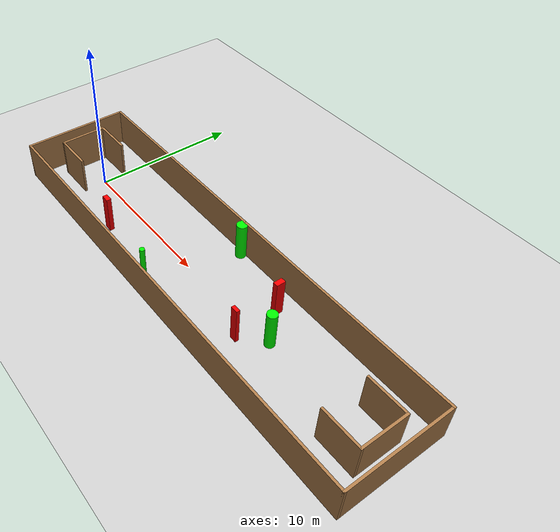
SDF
<sdf version="1.7">
 <world name="default">
  <light name="sun" type="directional">
   <pose>0 0 10 0 -0 0</pose>
   <diffuse>0.8 0.8 0.8 1</diffuse>
   <specular>0.2 0.2 0.2 1</specular>
   <attenuation>
    <range>1000</range>
    <constant>0.9</constant>
    <linear>0.01</linear>
    <quadratic>0.001</quadratic>
   </attenuation>
   <direction>-0.5 0.1 -0.9</direction>
   <spot><inner_angle>0</inner_angle><outer_angle>0</outer_angle><falloff>0</falloff></spot>
  </light>
  <model name="ground_plane">
   <static>1</static>
   <link name="link">
    <collision name="collision">
     <geometry><plane><normal>0 0 1</normal><size>100 100</size></plane></geometry>
     <surface>
      <contact><collide_bitmask>65535</collide_bitmask></contact>
      <friction><ode><mu>100</mu><mu2>50</mu2></ode></friction>
     </surface>
    </collision>
    <visual name="visual">
     <cast_shadows>0</cast_shadows>
     <geometry><plane><normal>0 0 1</normal><size>100 100</size></plane></geometry>
     <material>
      <script><uri>file://media/materials/scripts/gazebo.material</uri><name>Gazebo/Grey</name></script>
     </material>
    </visual>
   </link>
  </model>
  <gravity>0 0 -9.8</gravity>
  <magnetic_field>6e-06 2.3e-05 -4.2e-05</magnetic_field>
  <atmosphere type="adiabatic"/>
  <physics type="ode">
   <max_step_size>0.001</max_step_size>
   <real_time_factor>1</real_time_factor>
   <real_time_update_rate>1000</real_time_update_rate>
  </physics>
  <scene><ambient>0.4 0.4 0.4 1</ambient><background>0.7 0.7 0.7 1</background><shadows>1</shadows></scene>
  <spherical_coordinates>
   <surface_model>EARTH_WGS84</surface_model>
   <latitude_deg>0</latitude_deg>
   <longitude_deg>0</longitude_deg>
   <elevation>0</elevation>
   <heading_deg>0</heading_deg>
  </spherical_coordinates>
  <model name="my_base_walls">
   <link name="Wall_0">
    <collision name="Wall_0_Collision">
     <geometry><box><size>7.15 0.15 2.5</size></box></geometry>
     <pose>0 0 1.25 0 -0 0</pose>
    </collision>
    <visual name="Wall_0_Visual">
     <pose>0 0 1.25 0 -0 0</pose>
     <geometry><box><size>7.15 0.15 2.5</size></box></geometry>
     <material>
      <script><uri>file://media/materials/scripts/gazebo.material</uri><name>Gazebo/Wood</name></script>
      <ambient>1 1 1 1</ambient>
     </material>
     <meta><layer>0</layer></meta>
    </visual>
    <pose>-15 0 0 0 -0 1.5708</pose>
   </link>
   <link name="Wall_10">
    <collision name="Wall_10_Collision">
     <geometry><box><size>2.65 0.15 2.5</size></box></geometry>
     <pose>0 0 1.25 0 -0 0</pose>
    </collision>
    <visual name="Wall_10_Visual">
     <pose>0 0 1.25 0 -0 0</pose>
     <geometry><box><size>2.65 0.15 2.5</size></box></geometry>
     <material>
      <script><uri>file://media/materials/scripts/gazebo.material</uri><name>Gazebo/Wood</name></script>
      <ambient>1 1 1 1</ambient>
     </material>
     <meta><layer>0</layer></meta>
    </visual>
    <pose>-12.75 -1.5 0 0 -0 0</pose>
   </link>
   <link name="Wall_12">
    <collision name="Wall_12_Collision">
     <geometry><box><size>2.65 0.15 2.5</size></box></geometry>
     <pose>0 0 1.25 0 -0 0</pose>
    </collision>
    <visual name="Wall_12_Visual">
     <pose>0 0 1.25 0 -0 0</pose>
     <geometry><box><size>2.65 0.15 2.5</size></box></geometry>
     <material>
      <script><uri>file://media/materials/scripts/gazebo.material</uri><name>Gazebo/Wood</name></script>
      <ambient>1 1 1 1</ambient>
     </material>
     <meta><layer>0</layer></meta>
    </visual>
    <pose>-12.75 1.5 0 0 -0 0</pose>
   </link>
   <link name="Wall_14">
    <collision name="Wall_14_Collision">
     <geometry><box><size>3.15 0.15 2.5</size></box></geometry>
     <pose>0 0 1.25 0 -0 0</pose>
    </collision>
    <visual name="Wall_14_Visual">
     <pose>0 0 1.25 0 -0 0</pose>
     <geometry><box><size>3.15 0.15 2.5</size></box></geometry>
     <material>
      <script><uri>file://media/materials/scripts/gazebo.material</uri><name>Gazebo/Wood</name></script>
      <ambient>1 1 1 1</ambient>
     </material>
     <meta><layer>0</layer></meta>
    </visual>
    <pose>14 0 0 0 -0 -1.5708</pose>
   </link>
   <link name="Wall_15">
    <collision name="Wall_15_Collision">
     <geometry><box><size>2.65 0.15 2.5</size></box></geometry>
     <pose>0 0 1.25 0 -0 0</pose>
    </collision>
    <visual name="Wall_15_Visual">
     <pose>0 0 1.25 0 -0 0</pose>
     <geometry><box><size>2.65 0.15 2.5</size></box></geometry>
     <material>
      <script><uri>file://media/materials/scripts/gazebo.material</uri><name>Gazebo/Wood</name></script>
      <ambient>1 1 1 1</ambient>
     </material>
     <meta><layer>0</layer></meta>
    </visual>
    <pose>12.75 -1.5 0 0 -0 3.14159</pose>
   </link>
   <link name="Wall_17">
    <collision name="Wall_17_Collision">
     <geometry><box><size>2.65 0.15 2.5</size></box></geometry>
     <pose>0 0 1.25 0 -0 0</pose>
    </collision>
    <visual name="Wall_17_Visual">
     <pose>0 0 1.25 0 -0 0</pose>
     <geometry><box><size>2.65 0.15 2.5</size></box></geometry>
     <material>
      <script><uri>file://media/materials/scripts/gazebo.material</uri><name>Gazebo/Wood</name></script>
      <ambient>1 1 1 1</ambient>
     </material>
     <meta><layer>0</layer></meta>
    </visual>
    <pose>12.75 1.5 0 0 -0 3.14159</pose>
   </link>
   <link name="Wall_2">
    <collision name="Wall_2_Collision">
     <geometry><box><size>30.15 0.15 2.5</size></box></geometry>
     <pose>0 0 1.25 0 -0 0</pose>
    </collision>
    <visual name="Wall_2_Visual">
     <pose>0 0 1.25 0 -0 0</pose>
     <geometry><box><size>30.15 0.15 2.5</size></box></geometry>
     <material>
      <script><uri>file://media/materials/scripts/gazebo.material</uri><name>Gazebo/Wood</name></script>
      <ambient>1 1 1 1</ambient>
     </material>
     <meta><layer>0</layer></meta>
    </visual>
    <pose>-0 -3.5 0 0 -0 0</pose>
   </link>
   <link name="Wall_4">
    <collision name="Wall_4_Collision">
     <geometry><box><size>30.15 0.15 2.5</size></box></geometry>
     <pose>0 0 1.25 0 -0 0</pose>
    </collision>
    <visual name="Wall_4_Visual">
     <pose>0 0 1.25 0 -0 0</pose>
     <geometry><box><size>30.15 0.15 2.5</size></box></geometry>
     <material>
      <script><uri>file://media/materials/scripts/gazebo.material</uri><name>Gazebo/Wood</name></script>
      <ambient>1 1 1 1</ambient>
     </material>
     <meta><layer>0</layer></meta>
    </visual>
    <pose>-0 3.5 0 0 -0 0</pose>
   </link>
   <link name="Wall_6">
    <collision name="Wall_6_Collision">
     <geometry><box><size>7.15 0.15 2.5</size></box></geometry>
     <pose>0 0 1.25 0 -0 0</pose>
    </collision>
    <visual name="Wall_6_Visual">
     <pose>0 0 1.25 0 -0 0</pose>
     <geometry><box><size>7.15 0.15 2.5</size></box></geometry>
     <material>
      <script><uri>file://media/materials/scripts/gazebo.material</uri><name>Gazebo/Wood</name></script>
      <ambient>1 1 1 1</ambient>
     </material>
     <meta><layer>0</layer></meta>
    </visual>
    <pose>15 0 0 0 -0 -1.5708</pose>
   </link>
   <link name="Wall_9">
    <collision name="Wall_9_Collision">
     <geometry><box><size>3.15 0.15 2.5</size></box></geometry>
     <pose>0 0 1.25 0 -0 0</pose>
    </collision>
    <visual name="Wall_9_Visual">
     <pose>0 0 1.25 0 -0 0</pose>
     <geometry><box><size>3.15 0.15 2.5</size></box></geometry>
     <material>
      <script><uri>file://media/materials/scripts/gazebo.material</uri><name>Gazebo/Wood</name></script>
      <ambient>1 1 1 1</ambient>
     </material>
     <meta><layer>0</layer></meta>
    </visual>
    <pose>-14 0 0 0 -0 -1.5708</pose>
   </link>
   <static>1</static>
   <pose>11.5 0 0 0 -0 0</pose>
  </model>
  <model name="cylinder1">
   <static>1</static>
   <link name="link">
    <inertial>
     <mass>1</mass>
     <inertia><ixx>0.5</ixx><ixy>0</ixy><ixz>0</ixz><iyy>0.5</iyy><iyz>0</iyz><izz>1</izz></inertia>
    </inertial>
    <collision name="collision">
     <geometry><cylinder><radius>0.16269904329268534</radius><length>2.5</length></cylinder></geometry>
    </collision>
    <visual name="visual">
     <geometry><cylinder><radius>0.16269904329268534</radius><length>2.5</length></cylinder></geometry>
     <material>
      <ambient>0 1 0 1</ambient>
      <diffuse>0 1 0 1</diffuse>
      <specular>0.1 0.1 0.1 1</specular>
      <emissive>0 0 0 0</emissive>
     </material>
    </visual>
   </link>
   <pose>9.294004991962357 -2.6897322732508826 1.25 0 0 0</pose>
  </model>
  <model name="cylinder2">
   <static>1</static>
   <link name="link">
    <inertial>
     <mass>1</mass>
     <inertia><ixx>0.5</ixx><ixy>0</ixy><ixz>0</ixz><iyy>0.5</iyy><iyz>0</iyz><izz>1</izz></inertia>
    </inertial>
    <collision name="collision">
     <geometry><cylinder><radius>0.34145060056934257</radius><length>2.5</length></cylinder></geometry>
    </collision>
    <visual name="visual">
     <geometry><cylinder><radius>0.34145060056934257</radius><length>2.5</length></cylinder></geometry>
     <material>
      <ambient>0 1 0 1</ambient>
      <diffuse>0 1 0 1</diffuse>
      <specular>0.1 0.1 0.1 1</specular>
      <emissive>0 0 0 0</emissive>
     </material>
    </visual>
   </link>
   <pose>11.002825474691491 3.206007125902147 1.25 0 0 0</pose>
  </model>
  <model name="cylinder3">
   <static>1</static>
   <link name="link">
    <inertial>
     <mass>1</mass>
     <inertia><ixx>0.5</ixx><ixy>0</ixy><ixz>0</ixz><iyy>0.5</iyy><iyz>0</iyz><izz>1</izz></inertia>
    </inertial>
    <collision name="collision">
     <geometry><cylinder><radius>0.32186068077420993</radius><length>2.5</length></cylinder></geometry>
    </collision>
    <visual name="visual">
     <geometry><cylinder><radius>0.32186068077420993</radius><length>2.5</length></cylinder></geometry>
     <material>
      <ambient>0 1 0 1</ambient>
      <diffuse>0 1 0 1</diffuse>
      <specular>0.1 0.1 0.1 1</specular>
      <emissive>0 0 0 0</emissive>
     </material>
    </visual>
   </link>
   <pose>17.327551224488207 0.2570334184255083 1.25 0 0 0</pose>
  </model>
  <model name="box1">
   <static>1</static>
   <link name="link">
    <inertial>
     <mass>1</mass>
     <inertia><ixx>0.083</ixx><ixy>0</ixy><ixz>0</ixz><iyy>0.083</iyy><iyz>0</iyz><izz>0.083</izz></inertia>
    </inertial>
    <collision name="collision">
     <geometry><box><size>0.46217062957040855 0.22627711005323276 2.5</size></box></geometry>
    </collision>
    <visual name="visual">
     <geometry><box><size>0.46217062957040855 0.22627711005323276 2.5</size></box></geometry>
     <material>
      <ambient>1 0 0 1</ambient>
      <diffuse>1 0 0 1</diffuse>
      <specular>0.1 0.1 0.1 1</specular>
      <emissive>0 0 0 0</emissive>
     </material>
    </visual>
    <sensor name="my_contact" type="contact">
     <contact><collision>box_collision</collision><topic>__default_topic__</topic></contact>
    </sensor>
   </link>
   <pose>15.923038669025996 -1.0748718458733193 1.25 0 0 0</pose>
  </model>
  <model name="box2">
   <static>1</static>
   <link name="link">
    <inertial>
     <mass>1</mass>
     <inertia><ixx>0.083</ixx><ixy>0</ixy><ixz>0</ixz><iyy>0.083</iyy><iyz>0</iyz><izz>0.083</izz></inertia>
    </inertial>
    <collision name="collision">
     <geometry><box><size>0.33758928806402483 0.5970812013790754 2.5</size></box></geometry>
    </collision>
    <visual name="visual">
     <geometry><box><size>0.33758928806402483 0.5970812013790754 2.5</size></box></geometry>
     <material>
      <ambient>1 0 0 1</ambient>
      <diffuse>1 0 0 1</diffuse>
      <specular>0.1 0.1 0.1 1</specular>
      <emissive>0 0 0 0</emissive>
     </material>
    </visual>
    <sensor name="my_contact" type="contact">
     <contact><collision>box_collision</collision><topic>__default_topic__</topic></contact>
    </sensor>
   </link>
   <pose>15.815916362865114 2.0122936348546574 1.25 0 0 0</pose>
  </model>
  <model name="box3">
   <static>1</static>
   <link name="link">
    <inertial>
     <mass>1</mass>
     <inertia><ixx>0.083</ixx><ixy>0</ixy><ixz>0</ixz><iyy>0.083</iyy><iyz>0</iyz><izz>0.083</izz></inertia>
    </inertial>
    <collision name="collision">
     <geometry><box><size>0.517182732416601 0.30178005290293364 2.5</size></box></geometry>
    </collision>
    <visual name="visual">
     <geometry><box><size>0.517182732416601 0.30178005290293364 2.5</size></box></geometry>
     <material>
      <ambient>1 0 0 1</ambient>
      <diffuse>1 0 0 1</diffuse>
      <specular>0.1 0.1 0.1 1</specular>
      <emissive>0 0 0 0</emissive>
     </material>
    </visual>
    <sensor name="my_contact" type="contact">
     <contact><collision>box_collision</collision><topic>__default_topic__</topic></contact>
    </sensor>
   </link>
   <pose>4.194912857367619 -2.0472317422332766 1.25 0 0 0</pose>
  </model>
 </world>
</sdf>
